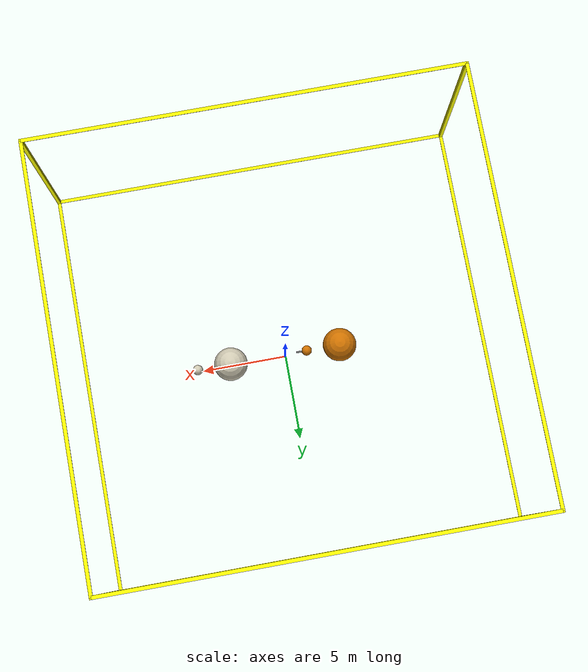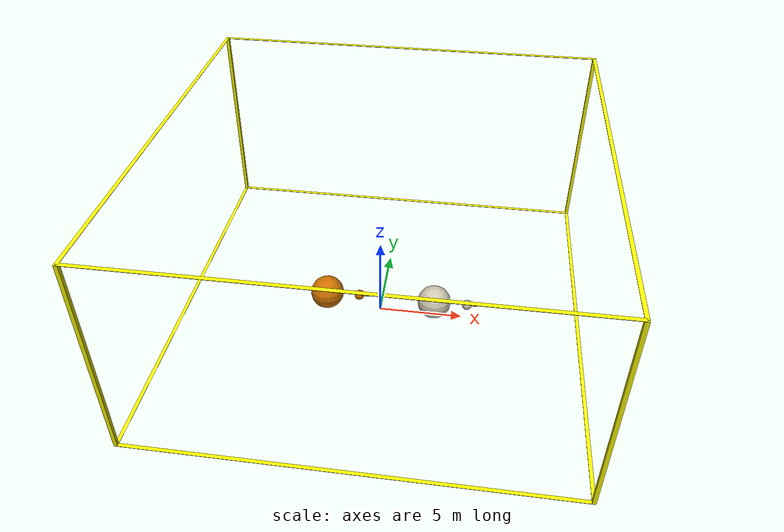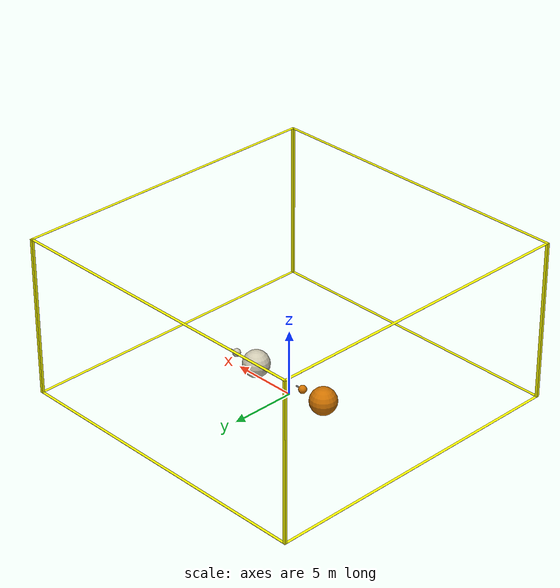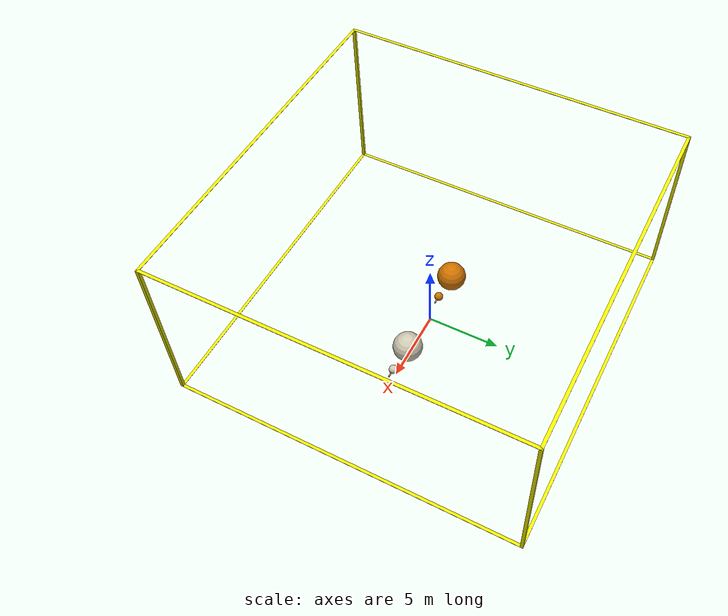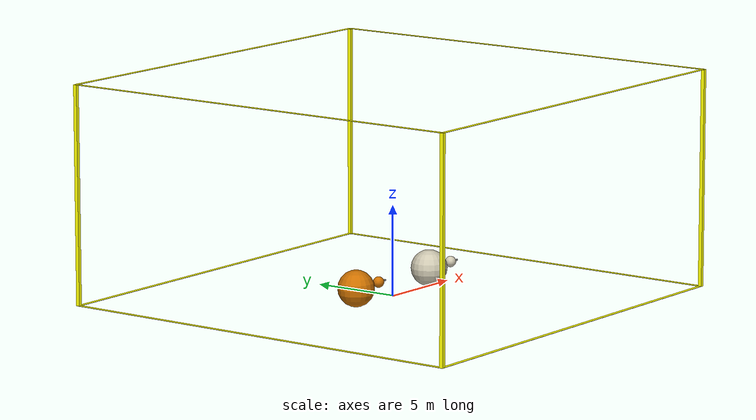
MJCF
<mujoco>
  <option timestep="0.001" gravity="0 0 -9.8" integrator="RK4" />

  <visual>
    <headlight ambient="0.4 0.3 0.1" diffuse="0.8 0.7 0.5" specular="0.3 0.3 0.3" />
    <rgba fog="0.3 0.22 0.05 1" />
    <quality shadowsize="4096" />
  </visual>

  <statistic extent="10" meansize="0.5" />

  <default>
    <geom friction="1.8 0.1 0.1" solref="0.01 1" solimp="0.9 0.95 0.001" />
    <joint damping="0.8" armature="0.5" />
    <motor gear="450" />
  </default>

  <asset>
    <texture name="grid_tex" type="2d" builtin="checker" width="512" height="512"
          rgb1="0.1 0.1 0.2" rgb2="0.15 0.15 0.3" />

    <material name="grid_material"
          texture="grid_tex"
          texrepeat="10 10"
          specular="0.2"
          shininess="0.1"
          rgba="0.1 0.06 0.04 0" />

    <material name="wall_material"
          specular="0.5"
          shininess="0.1"
          rgba="0.18 0.09 0.06 0" />

    <material name="safety_wall_material" rgba="1 0 0 0" />

    <material name="roof_material"
          specular="0.3"
          shininess="0.2"
          rgba="0.2 0.2 0.3 0" />

    <texture name="robot1_tex" type="cube" builtin="flat" width="512" height="512"
          mark="random" markrgb="1.0 0.2 0.2" />
    <texture name="robot2_tex" type="cube" builtin="flat" width="512" height="512"
          mark="random" markrgb="0.2 0.2 1.0" />
    <material name="robot1_body_mat" texture="robot1_tex" specular="0.8" shininess="0.9"
          rgba="1.0 0.55 0.0 1" />
    <material name="robot2_body_mat" texture="robot2_tex" specular="0.8" shininess="0.9"
          rgba="1.0 0.97 0.86 1" />

    <material name="spike_mat" specular="1.0" shininess="1.0" rgba="0.5 0.5 0.5 1" />
    <material name="yellow_outline" rgba="1 1 0 1" specular="1" shininess="1" emission="1.0" />
  </asset>

  <worldbody>
    <light name="main_light" pos="0 0 15" dir="0 0 -1" diffuse="0.9 0.9 1.0"
          specular="0.5 0.5 0.8" />
    <geom name="floor" type="plane" size="50 50 0.1"
          material="grid_material"
          condim="3"
          friction="1 0.005 0.005" />

    <!-- Thick Outer Arena Walls -->
    <geom name="wall_n" type="box" pos="0 15.0 6.0" size="12.5 2.5 6.0" material="wall_material" />
    <geom name="wall_s" type="box" pos="0 -15.0 6.0" size="12.5 2.5 6.0" material="wall_material" />
    <geom name="wall_e" type="box" pos="15.0 0 6.0" size="2.5 12.5 6.0" material="wall_material" />
    <geom name="wall_w" type="box" pos="-15.0 0 6.0" size="2.5 12.5 6.0" material="wall_material" />
    <geom name="roof" type="box" pos="0 0 12.1" size="17.6 17.6 0.1" material="roof_material" />

    <!-- Yellow Arena Outline -->
    <geom name="outline_n_floor" type="box" pos="0 12.0 0.01" size="12.0 0.1 0.01" material="yellow_outline" contype="0" conaffinity="0" />
    <geom name="outline_s_floor" type="box" pos="0 -12.0 0.01" size="12.0 0.1 0.01" material="yellow_outline" contype="0" conaffinity="0" />
    <geom name="outline_e_floor" type="box" pos="12.0 0 0.01" size="0.1 12.0 0.01" material="yellow_outline" contype="0" conaffinity="0" />
    <geom name="outline_w_floor" type="box" pos="-12.0 0 0.01" size="0.1 12.0 0.01" material="yellow_outline" contype="0" conaffinity="0" />
    <geom name="outline_n_ceil" type="box" pos="0 12.0 12.0" size="12.0 0.1 0.01" material="yellow_outline" contype="0" conaffinity="0" />
    <geom name="outline_s_ceil" type="box" pos="0 -12.0 12.0" size="12.0 0.1 0.01" material="yellow_outline" contype="0" conaffinity="0" />
    <geom name="outline_e_ceil" type="box" pos="12.0 0 12.0" size="0.1 12.0 0.01" material="yellow_outline" contype="0" conaffinity="0" />
    <geom name="outline_w_ceil" type="box" pos="-12.0 0 12.0" size="0.1 12.0 0.01" material="yellow_outline" contype="0" conaffinity="0" />
    <geom name="outline_ne_pillar" type="box" pos="12.0 12.0 6.0" size="0.1 0.1 6.0" material="yellow_outline" contype="0" conaffinity="0" />
    <geom name="outline_nw_pillar" type="box" pos="-12.0 12.0 6.0" size="0.1 0.1 6.0" material="yellow_outline" contype="0" conaffinity="0" />
    <geom name="outline_se_pillar" type="box" pos="12.0 -12.0 6.0" size="0.1 0.1 6.0" material="yellow_outline" contype="0" conaffinity="0" />
    <geom name="outline_sw_pillar" type="box" pos="-12.0 -12.0 6.0" size="0.1 0.1 6.0" material="yellow_outline" contype="0" conaffinity="0" />

    <!-- Robot 1 (Bright Red) - Large central sphere with 1 orbiting satellite -->
    <body name="robot1" pos="-3.3 0 1.0">
      <freejoint name="r1_root" />
      <!-- Large central sphere (twice the size = radius 1.0) -->
      <geom name="r1_body" type="sphere" size="1.0"
            material="robot1_body_mat"
            mass="30" />
      <site name="r1_center" pos="0 0 0" size="0.01" rgba="1 0 0 1"/>

      <!-- Single satellite with hinge joint for full orbit capability -->
      <body name="r1_satellite" pos="0 0 0">
        <!-- Hinge joint allowing full 360 degree rotation around the central sphere -->
        <joint name="r1_sat_yaw" type="hinge" axis="0 0 1" />
        <joint name="r1_sat_pitch" type="hinge" axis="0 1 0" />

        <!-- Satellite core at orbit radius -->
        <geom name="r1_sat_core" type="sphere" pos="2.0 0 0" size="0.3" material="robot1_body_mat" mass="8" />

        <!-- Spike/Weapon extending from satellite -->
        <body name="r1_sat_spike" pos="2.0 0 0">
          <joint name="r1_sat_spike_slide" type="slide" axis="1 0 0" range="0 0.8"/>
          <geom name="r1_sat_spike_geom" type="cylinder" fromto="0 0 0 0.6 0 0" size="0.05" material="spike_mat" mass="2" />
          <site name="r1_sat_site" pos="0.6 0 0" size="0.05" rgba="1 1 1 0.5" />
        </body>
      </body>
    </body>

    <!-- Robot 2 (Bright Blue) - Large central sphere with 1 orbiting satellite -->
    <body name="robot2" pos="3.3 0 1.0">
      <freejoint name="r2_root" />
      <!-- Large central sphere (twice the size = radius 1.0) -->
      <geom name="r2_body" type="sphere" size="1.0"
            material="robot2_body_mat"
            mass="30" />
      <site name="r2_center" pos="0 0 0" size="0.01" rgba="0 0 1 1"/>

      <!-- Single satellite with hinge joint for full orbit capability -->
      <body name="r2_satellite" pos="0 0 0">
        <!-- Hinge joint allowing full 360 degree rotation around the central sphere -->
        <joint name="r2_sat_yaw" type="hinge" axis="0 0 1" />
        <joint name="r2_sat_pitch" type="hinge" axis="0 1 0" />

        <!-- Satellite core at orbit radius -->
        <geom name="r2_sat_core" type="sphere" pos="2.0 0 0" size="0.3" material="robot2_body_mat" mass="8" />

        <!-- Spike/Weapon extending from satellite -->
        <body name="r2_sat_spike" pos="2.0 0 0">
          <joint name="r2_sat_spike_slide" type="slide" axis="1 0 0" range="0 0.8"/>
          <geom name="r2_sat_spike_geom" type="cylinder" fromto="0 0 0 0.6 0 0" size="0.05" material="spike_mat" mass="2" />
          <site name="r2_sat_site" pos="0.6 0 0" size="0.05" rgba="1 1 1 0.5" />
        </body>
      </body>
    </body>
  </worldbody>

  <actuator>
    <!-- Robot 1 Actuators -->
    <motor name="r1m_yaw" joint="r1_sat_yaw" />
    <motor name="r1m_pitch" joint="r1_sat_pitch" />
    <motor name="r1m_spike" joint="r1_sat_spike_slide" />

    <!-- Robot 2 Actuators -->
    <motor name="r2m_yaw" joint="r2_sat_yaw" />
    <motor name="r2m_pitch" joint="r2_sat_pitch" />
    <motor name="r2m_spike" joint="r2_sat_spike_slide" />
  </actuator>

  <sensor>
    <!-- Robot 1 Sensors -->
    <jointvel name="r1_jvel_yaw" joint="r1_sat_yaw"/>
    <jointvel name="r1_jvel_pitch" joint="r1_sat_pitch"/>
    <jointvel name="r1_jvel_spike" joint="r1_sat_spike_slide"/>
    <gyro name="r1_gyro" site="r1_center"/>
    <accelerometer name="r1_accel" site="r1_center"/>
    <velocimeter name="r1_velo" site="r1_center"/>
    <touch name="r1_body_touch" site="r1_center"/>
    <touch name="r1_sat_touch" site="r1_sat_site"/>
    <force name="r1_force" site="r1_sat_site"/>

    <!-- Robot 2 Sensors -->
    <jointvel name="r2_jvel_yaw" joint="r2_sat_yaw"/>
    <jointvel name="r2_jvel_pitch" joint="r2_sat_pitch"/>
    <jointvel name="r2_jvel_spike" joint="r2_sat_spike_slide"/>
    <gyro name="r2_gyro" site="r2_center"/>
    <accelerometer name="r2_accel" site="r2_center"/>
    <velocimeter name="r2_velo" site="r2_center"/>
    <touch name="r2_body_touch" site="r2_center"/>
    <touch name="r2_sat_touch" site="r2_sat_site"/>
    <force name="r2_force" site="r2_sat_site"/>
  </sensor>
</mujoco>
